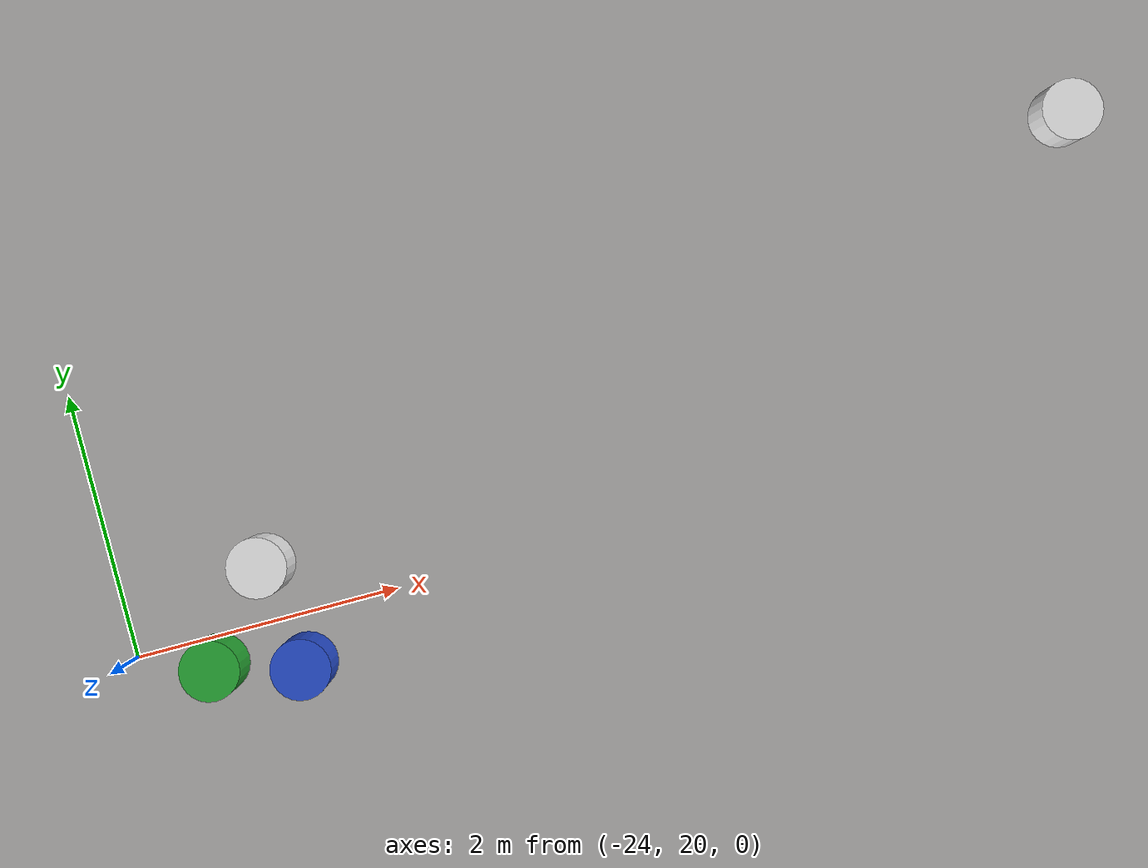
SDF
<sdf version="1.7">
 <world name="IGVC AutoNav">
  <model name="barrel_8">
   <link name="link">
    <inertial>
     <mass>1</mass>
     <inertia><ixx>0.145833</ixx><ixy>0</ixy><ixz>0</ixz><iyy>0.145833</iyy><iyz>0</iyz><izz>0.125</izz></inertia>
    </inertial>
    <visual name="visual">
     <geometry><cylinder><radius>0.222916</radius><length>1.03567</length></cylinder></geometry>
     <material>
      <script><name>Gazebo/White</name><uri>file://media/materials/scripts/gazebo.material</uri></script>
      <shader type="pixel"/>
     </material>
    </visual>
    <collision name="collision">
     <geometry><cylinder><radius>0.222916</radius><length>1.03567</length></cylinder></geometry>
     <surface>
      <friction>
       <ode><mu>1</mu><mu2>1</mu2><fdir1>0 0 0</fdir1><slip1>0</slip1><slip2>0</slip2></ode>
       <torsional>
        <coefficient>1</coefficient>
        <patch_radius>0</patch_radius>
        <surface_radius>0</surface_radius>
        <use_patch_radius>1</use_patch_radius>
        <ode><slip>0</slip></ode>
       </torsional>
      </friction>
      <bounce><restitution_coefficient>0</restitution_coefficient><threshold>1e+06</threshold></bounce>
      <contact>
       <collide_without_contact>0</collide_without_contact>
       <collide_without_contact_bitmask>1</collide_without_contact_bitmask>
       <collide_bitmask>1</collide_bitmask>
       <ode>
        <soft_cfm>0</soft_cfm>
        <soft_erp>0.2</soft_erp>
        <kp>1e+13</kp>
        <kd>1</kd>
        <max_vel>0.01</max_vel>
        <min_depth>0</min_depth>
       </ode>
       <bullet>
        <split_impulse>1</split_impulse>
        <split_impulse_penetration_threshold>-0.01</split_impulse_penetration_threshold>
        <soft_cfm>0</soft_cfm>
        <soft_erp>0.2</soft_erp>
        <kp>1e+13</kp>
        <kd>1</kd>
       </bullet>
      </contact>
     </surface>
    </collision>
   </link>
   <static>0</static>
   <pose>-22.9019 20.4353 0.517826 -1e-06 -0 0.000374</pose>
  </model>
  <model name="barrel_10">
   <link name="link">
    <inertial>
     <mass>1</mass>
     <inertia><ixx>0.145833</ixx><ixy>0</ixy><ixz>0</ixz><iyy>0.145833</iyy><iyz>0</iyz><izz>0.125</izz></inertia>
    </inertial>
    <visual name="visual">
     <geometry><cylinder><radius>0.222916</radius><length>1.03567</length></cylinder></geometry>
     <material>
      <script><name>Gazebo/Blue</name><uri>file://media/materials/scripts/gazebo.material</uri></script>
      <shader type="pixel"/>
     </material>
    </visual>
    <collision name="collision">
     <geometry><cylinder><radius>0.222916</radius><length>1.03567</length></cylinder></geometry>
     <surface>
      <friction>
       <ode><mu>1</mu><mu2>1</mu2><fdir1>0 0 0</fdir1><slip1>0</slip1><slip2>0</slip2></ode>
       <torsional>
        <coefficient>1</coefficient>
        <patch_radius>0</patch_radius>
        <surface_radius>0</surface_radius>
        <use_patch_radius>1</use_patch_radius>
        <ode><slip>0</slip></ode>
       </torsional>
      </friction>
      <bounce><restitution_coefficient>0</restitution_coefficient><threshold>1e+06</threshold></bounce>
      <contact>
       <collide_without_contact>0</collide_without_contact>
       <collide_without_contact_bitmask>1</collide_without_contact_bitmask>
       <collide_bitmask>1</collide_bitmask>
       <ode>
        <soft_cfm>0</soft_cfm>
        <soft_erp>0.2</soft_erp>
        <kp>1e+13</kp>
        <kd>1</kd>
        <max_vel>0.01</max_vel>
        <min_depth>0</min_depth>
       </ode>
       <bullet>
        <split_impulse>1</split_impulse>
        <split_impulse_penetration_threshold>-0.01</split_impulse_penetration_threshold>
        <soft_cfm>0</soft_cfm>
        <soft_erp>0.2</soft_erp>
        <kp>1e+13</kp>
        <kd>1</kd>
       </bullet>
      </contact>
     </surface>
    </collision>
   </link>
   <static>0</static>
   <pose>-22.7816 19.6452 0.517834 1e-06 1e-06 0.000391</pose>
  </model>
  <model name="barrel_13">
   <link name="link">
    <inertial>
     <mass>1</mass>
     <inertia><ixx>0.145833</ixx><ixy>0</ixy><ixz>0</ixz><iyy>0.145833</iyy><iyz>0</iyz><izz>0.125</izz></inertia>
    </inertial>
    <visual name="visual">
     <geometry><cylinder><radius>0.222916</radius><length>1.03567</length></cylinder></geometry>
     <material>
      <script><name>Gazebo/Green</name><uri>file://media/materials/scripts/gazebo.material</uri></script>
      <shader type="pixel"/>
     </material>
    </visual>
    <collision name="collision">
     <geometry><cylinder><radius>0.222916</radius><length>1.03567</length></cylinder></geometry>
     <surface>
      <friction>
       <ode><mu>1</mu><mu2>1</mu2><fdir1>0 0 0</fdir1><slip1>0</slip1><slip2>0</slip2></ode>
       <torsional>
        <coefficient>1</coefficient>
        <patch_radius>0</patch_radius>
        <surface_radius>0</surface_radius>
        <use_patch_radius>1</use_patch_radius>
        <ode><slip>0</slip></ode>
       </torsional>
      </friction>
      <bounce><restitution_coefficient>0</restitution_coefficient><threshold>1e+06</threshold></bounce>
      <contact>
       <collide_without_contact>0</collide_without_contact>
       <collide_without_contact_bitmask>1</collide_without_contact_bitmask>
       <collide_bitmask>1</collide_bitmask>
       <ode>
        <soft_cfm>0</soft_cfm>
        <soft_erp>0.2</soft_erp>
        <kp>1e+13</kp>
        <kd>1</kd>
        <max_vel>0.01</max_vel>
        <min_depth>0</min_depth>
       </ode>
       <bullet>
        <split_impulse>1</split_impulse>
        <split_impulse_penetration_threshold>-0.01</split_impulse_penetration_threshold>
        <soft_cfm>0</soft_cfm>
        <soft_erp>0.2</soft_erp>
        <kp>1e+13</kp>
        <kd>1</kd>
       </bullet>
      </contact>
     </surface>
    </collision>
   </link>
   <static>0</static>
   <pose>-23.4206 19.804 0.517827 1e-06 -1e-06 0.000355</pose>
  </model>
  <model name="barrel_15">
   <link name="link">
    <inertial>
     <mass>1</mass>
     <inertia><ixx>0.145833</ixx><ixy>0</ixy><ixz>0</ixz><iyy>0.145833</iyy><iyz>0</iyz><izz>0.125</izz></inertia>
    </inertial>
    <visual name="visual">
     <geometry><cylinder><radius>0.222916</radius><length>1.03567</length></cylinder></geometry>
     <material>
      <script><name>Gazebo/White</name><uri>file://media/materials/scripts/gazebo.material</uri></script>
      <shader type="pixel"/>
     </material>
    </visual>
    <collision name="collision">
     <geometry><cylinder><radius>0.222916</radius><length>1.03567</length></cylinder></geometry>
     <surface>
      <friction>
       <ode><mu>1</mu><mu2>1</mu2><fdir1>0 0 0</fdir1><slip1>0</slip1><slip2>0</slip2></ode>
       <torsional>
        <coefficient>1</coefficient>
        <patch_radius>0</patch_radius>
        <surface_radius>0</surface_radius>
        <use_patch_radius>1</use_patch_radius>
        <ode><slip>0</slip></ode>
       </torsional>
      </friction>
      <bounce><restitution_coefficient>0</restitution_coefficient><threshold>1e+06</threshold></bounce>
      <contact>
       <collide_without_contact>0</collide_without_contact>
       <collide_without_contact_bitmask>1</collide_without_contact_bitmask>
       <collide_bitmask>1</collide_bitmask>
       <ode>
        <soft_cfm>0</soft_cfm>
        <soft_erp>0.2</soft_erp>
        <kp>1e+13</kp>
        <kd>1</kd>
        <max_vel>0.01</max_vel>
        <min_depth>0</min_depth>
       </ode>
       <bullet>
        <split_impulse>1</split_impulse>
        <split_impulse_penetration_threshold>-0.01</split_impulse_penetration_threshold>
        <soft_cfm>0</soft_cfm>
        <soft_erp>0.2</soft_erp>
        <kp>1e+13</kp>
        <kd>1</kd>
       </bullet>
      </contact>
     </surface>
    </collision>
   </link>
   <static>0</static>
   <pose>-16.3625 22.1169 0.517834 0 -0 0.000426</pose>
  </model>
 </world>
</sdf>
